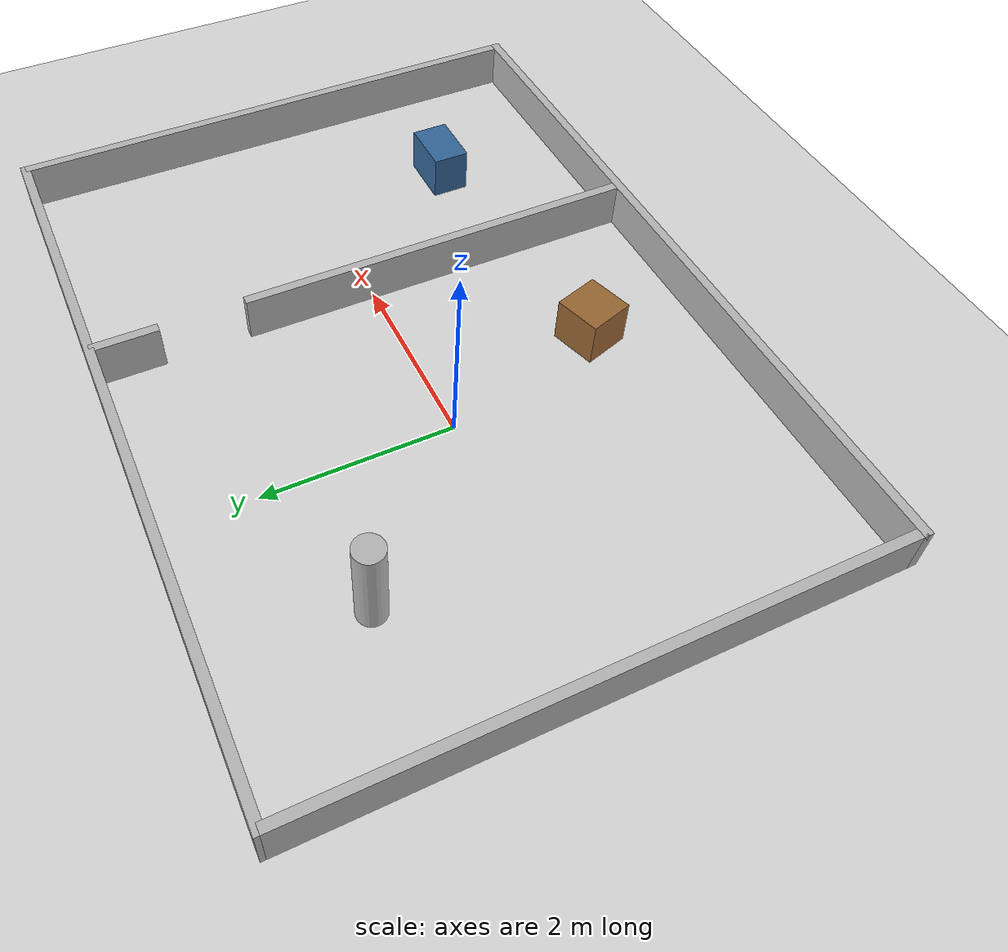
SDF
<?xml version="1.0"?>
<!-- Simple 8 x 6 m test area for SLAM / Nav2 in Gazebo Harmonic: walls, a doorway, some boxes. -->
<sdf version="1.8">
  <world name="test_area">
    <physics name="1ms" type="ignored">
      <max_step_size>0.001</max_step_size>
      <real_time_factor>1.0</real_time_factor>
    </physics>
    <plugin filename="gz-sim-physics-system" name="gz::sim::systems::Physics"/>
    <plugin filename="gz-sim-user-commands-system" name="gz::sim::systems::UserCommands"/>
    <plugin filename="gz-sim-scene-broadcaster-system" name="gz::sim::systems::SceneBroadcaster"/>
    <plugin filename="gz-sim-sensors-system" name="gz::sim::systems::Sensors">
      <render_engine>ogre2</render_engine>
    </plugin>

    <light type="directional" name="sun">
      <cast_shadows>true</cast_shadows>
      <pose>0 0 10 0 0 0</pose>
      <diffuse>0.9 0.9 0.9 1</diffuse>
      <specular>0.2 0.2 0.2 1</specular>
      <direction>-0.4 0.2 -0.9</direction>
    </light>

    <model name="ground_plane">
      <static>true</static>
      <link name="link">
        <collision name="collision">
          <geometry><plane><normal>0 0 1</normal><size>30 30</size></plane></geometry>
        </collision>
        <visual name="visual">
          <geometry><plane><normal>0 0 1</normal><size>30 30</size></plane></geometry>
          <material><ambient>0.85 0.85 0.85 1</ambient><diffuse>0.85 0.85 0.85 1</diffuse></material>
        </visual>
      </link>
    </model>

    <!-- walls: 0.1 m thick, 0.5 m high. Room spans x -3..5, y -3..3; the robot starts at the origin. -->
    <model name="walls">
      <static>true</static>
      <link name="link">
        <collision name="north"><pose>1 3 0.25 0 0 0</pose><geometry><box><size>8.1 0.1 0.5</size></box></geometry></collision>
        <visual name="north"><pose>1 3 0.25 0 0 0</pose><geometry><box><size>8.1 0.1 0.5</size></box></geometry></visual>
        <collision name="south"><pose>1 -3 0.25 0 0 0</pose><geometry><box><size>8.1 0.1 0.5</size></box></geometry></collision>
        <visual name="south"><pose>1 -3 0.25 0 0 0</pose><geometry><box><size>8.1 0.1 0.5</size></box></geometry></visual>
        <collision name="west"><pose>-3 0 0.25 0 0 0</pose><geometry><box><size>0.1 6 0.5</size></box></geometry></collision>
        <visual name="west"><pose>-3 0 0.25 0 0 0</pose><geometry><box><size>0.1 6 0.5</size></box></geometry></visual>
        <collision name="east"><pose>5 0 0.25 0 0 0</pose><geometry><box><size>0.1 6 0.5</size></box></geometry></collision>
        <visual name="east"><pose>5 0 0.25 0 0 0</pose><geometry><box><size>0.1 6 0.5</size></box></geometry></visual>
        <!-- inner wall with a 0.9 m doorway between y = 1.4 and y = 2.3 -->
        <collision name="inner_a"><pose>2 -0.8 0.25 0 0 0</pose><geometry><box><size>0.1 4.4 0.5</size></box></geometry></collision>
        <visual name="inner_a"><pose>2 -0.8 0.25 0 0 0</pose><geometry><box><size>0.1 4.4 0.5</size></box></geometry></visual>
        <collision name="inner_b"><pose>2 2.65 0.25 0 0 0</pose><geometry><box><size>0.1 0.7 0.5</size></box></geometry></collision>
        <visual name="inner_b"><pose>2 2.65 0.25 0 0 0</pose><geometry><box><size>0.1 0.7 0.5</size></box></geometry></visual>
      </link>
    </model>

    <model name="box_1">
      <static>true</static>
      <pose>0.5 -1.8 0.25 0 0 0.3</pose>
      <link name="link">
        <collision name="c"><geometry><box><size>0.5 0.5 0.5</size></box></geometry></collision>
        <visual name="v"><geometry><box><size>0.5 0.5 0.5</size></box></geometry>
          <material><ambient>0.6 0.4 0.2 1</ambient><diffuse>0.6 0.4 0.2 1</diffuse></material></visual>
      </link>
    </model>
    <model name="box_2">
      <static>true</static>
      <pose>3.5 -1.5 0.25 0 0 0</pose>
      <link name="link">
        <collision name="c"><geometry><box><size>0.6 0.4 0.5</size></box></geometry></collision>
        <visual name="v"><geometry><box><size>0.6 0.4 0.5</size></box></geometry>
          <material><ambient>0.2 0.4 0.6 1</ambient><diffuse>0.2 0.4 0.6 1</diffuse></material></visual>
      </link>
    </model>
    <model name="pillar">
      <static>true</static>
      <pose>-1.5 1.5 0.5 0 0 0</pose>
      <link name="link">
        <collision name="c"><geometry><cylinder><radius>0.15</radius><length>1.0</length></cylinder></geometry></collision>
        <visual name="v"><geometry><cylinder><radius>0.15</radius><length>1.0</length></cylinder></geometry></visual>
      </link>
    </model>
  </world>
</sdf>
